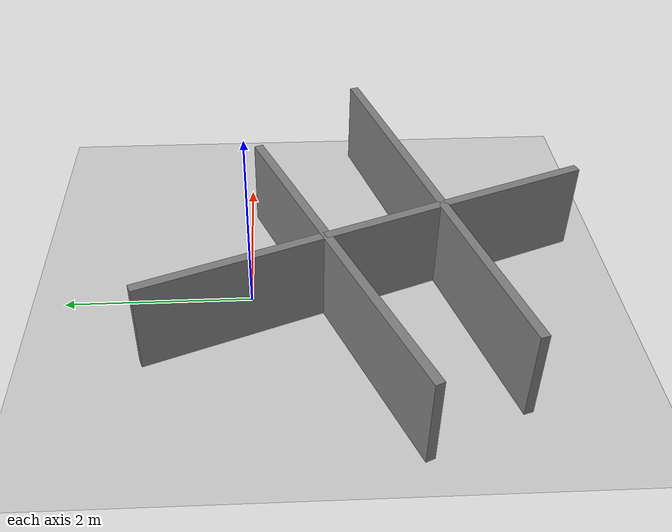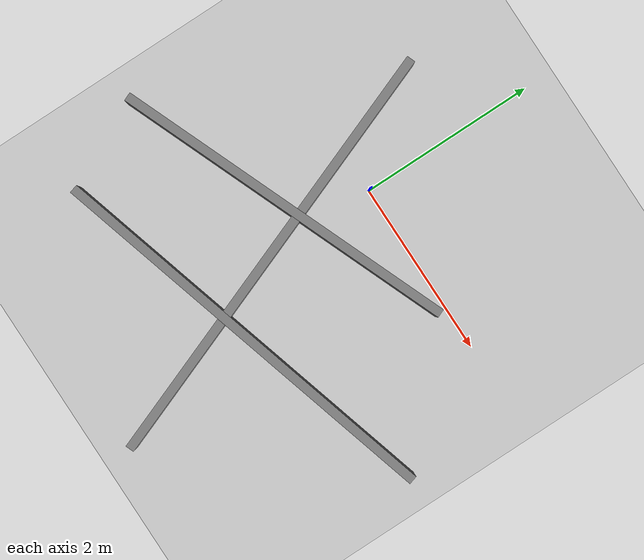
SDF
<?xml version='1.0' encoding='utf-8'?>
<sdf version="1.9">
  <world name="fgdgf">
    <physics name="1ms" type="dart">
      <max_step_size>0.001</max_step_size>
      <real_time_factor>1</real_time_factor>
      <real_time_update_rate>1000</real_time_update_rate>
    </physics>
    <plugin name="gz::sim::systems::Physics" filename="gz-sim-physics-system" />
    <plugin name="gz::sim::systems::UserCommands" filename="gz-sim-user-commands-system" />
    <plugin name="gz::sim::systems::SceneBroadcaster" filename="gz-sim-scene-broadcaster-system" />
    <plugin name="gz::sim::systems::Contact" filename="gz-sim-contact-system" />
    <plugin name="gz::sim::systems::Sensors" filename="gz-sim-sensors-system">
      <render_engine>ogre2</render_engine>
    </plugin>
    <gravity>0 0 -9.8</gravity>
    <magnetic_field>6e-06 2.3e-05 -4.2e-05</magnetic_field>
    <atmosphere type="adiabatic" />
    <scene>
      <ambient>0.4 0.4 0.4 1</ambient>
      <background>0.7 0.7 0.7 1</background>
      <shadows>true</shadows>
    </scene>
    <model name="ground_plane">
      <static>true</static>
      <link name="link">
        <collision name="collision">
          <geometry>
            <plane>
              <normal>0 0 1</normal>
              <size>100 100</size>
            </plane>
          </geometry>
          <surface>
            <friction>
              <ode />
            </friction>
            <bounce />
            <contact />
          </surface>
        </collision>
        <visual name="visual">
          <geometry>
            <plane>
              <normal>0 0 1</normal>
              <size>100 100</size>
            </plane>
          </geometry>
          <material>
            <ambient>0.8 0.8 0.8 1</ambient>
            <diffuse>0.8 0.8 0.8 1</diffuse>
            <specular>0.8 0.8 0.8 1</specular>
          </material>
        </visual>
        <pose>0 0 0 0 -0 0</pose>
        <inertial>
          <pose>0 0 0 0 -0 0</pose>
          <mass>1</mass>
          <inertia>
            <ixx>1</ixx>
            <ixy>0</ixy>
            <ixz>0</ixz>
            <iyy>1</iyy>
            <iyz>0</iyz>
            <izz>1</izz>
          </inertia>
        </inertial>
        <enable_wind>false</enable_wind>
      </link>
      <pose>0 0 0 0 -0 0</pose>
      <self_collide>false</self_collide>
    </model>
    <light name="sun" type="directional">
      <pose>0 0 10 0 -0 0</pose>
      <cast_shadows>true</cast_shadows>
      <intensity>1</intensity>
      <direction>-0.5 0.1 -0.9</direction>
      <diffuse>0.8 0.8 0.8 1</diffuse>
      <specular>0.2 0.2 0.2 1</specular>
      <attenuation>
        <range>1000</range>
        <linear>0.01</linear>
        <constant>0.90000000000000002</constant>
        <quadratic>0.001</quadratic>
      </attenuation>
      <spot>
        <inner_angle>0</inner_angle>
        <outer_angle>0</outer_angle>
        <falloff>0</falloff>
      </spot>
    </light>
  <model name="wall_1">
            <static>true</static>
            <type>wall</type>
            <pose>-0.350000 -0.850000 0.500000 0 0 -2.756435</pose>
            <link name="link">
                <collision name="collision">
                    <geometry><box><size>3.992493 0.100000 1.000000</size></box></geometry>
                </collision>
                <visual name="visual">
                    <geometry><box><size>3.992493 0.100000 1.000000</size></box></geometry>
                    <material>
                        <diffuse>0.5 0.5 0.5 1</diffuse>
                    </material>
                </visual></link></model><model name="wall_2">
            <static>true</static>
            <type>wall</type>
            <pose>0.550000 -1.950000 0.500000 0 0 0.281232</pose>
            <link name="link">
                <collision name="collision">
                    <geometry><box><size>4.684015 0.100000 1.000000</size></box></geometry>
                </collision>
                <visual name="visual">
                    <geometry><box><size>4.684015 0.100000 1.000000</size></box></geometry>
                    <material>
                        <diffuse>0.5 0.5 0.5 1</diffuse>
                    </material>
                </visual></link></model><model name="wall_3">
            <static>true</static>
            <type>wall</type>
            <pose>0.000000 -1.250000 0.500000 0 0 1.936544</pose>
            <link name="link">
                <collision name="collision">
                    <geometry><box><size>5.032892 0.100000 1.000000</size></box></geometry>
                </collision>
                <visual name="visual">
                    <geometry><box><size>5.032892 0.100000 1.000000</size></box></geometry>
                    <material>
                        <diffuse>0.5 0.5 0.5 1</diffuse>
                    </material>
                </visual></link></model></world>
</sdf>
